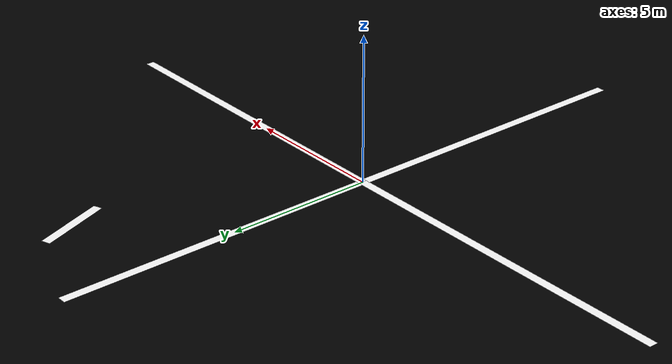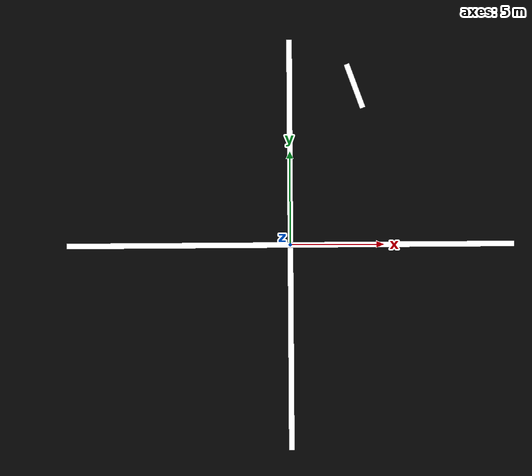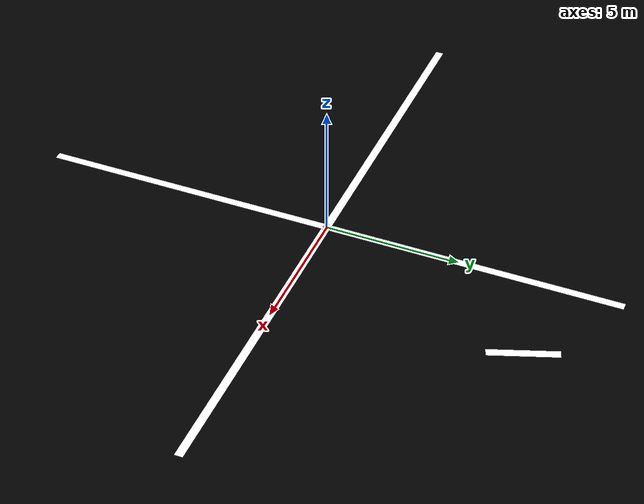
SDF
<?xml version="1.0" ?>
<sdf version="1.6">
  <world name="default">
    <scene>
      <sky><enable>false</enable></sky>
      <ambient>0.02 0.02 0.02 1</ambient>
      <background>0 0 0 1</background>
      <shadows>false</shadows>
    </scene>

    <include>
      <uri>model://blacktrack</uri>
      <pose>0 0 0 0 0 0</pose>
    </include>

    <gravity>0 0 -9.81</gravity>
    <physics type="ode">
      <max_step_size>0.001</max_step_size>
      <real_time_update_rate>1000</real_time_update_rate>
    </physics>
  </world>
</sdf>

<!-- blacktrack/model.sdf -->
<sdf version="1.6">
  <model name="blacktrack">
    <static>true</static>
    <self_collide>false</self_collide>

    <!-- ⚫️ 바닥: 충돌 plane (z=0), 시각화는 검정 -->
    <link name="floor_link">
      <pose>0 0 0 0 0 0</pose>
      <collision name="floor_collision">
        <geometry>
          <plane>
            <normal>0 0 1</normal>
            <size>50 50</size> <!-- 반드시 양수 -->
          </plane>
        </geometry>
      </collision>
      <visual name="floor_visual">
        <cast_shadows>false</cast_shadows>
        <geometry>
          <plane>
            <normal>0 0 1</normal>
            <size>50 50</size>
          </plane>
        </geometry>
        <material>
          <ambient>0 0 0 1</ambient>
          <diffuse>0 0 0 1</diffuse>
          <specular>0 0 0 1</specular>
          <emissive>0 0 0 1</emissive>
        </material>
      </visual>
    </link>

    <!-- ⚪️ 트랙 라인: visual-only 얇은 박스들 (collision 없음), z=+0.01로 살짝 띄움 -->
    <!-- 바깥 직선 구간이 긴 ‘운동장’ 형태: 필요만큼 복제/배치하면 됨 -->
    <!-- 중앙 세로 라인 -->
    <link name="lane_center_1">
      <pose>0 0 0.01 0 0 0</pose>
      <visual name="v">
        <geometry><box><size>0.30 22.0 0.001</size></box></geometry>
        <material><diffuse>1 1 1 1</diffuse><emissive>1 1 1 1</emissive></material>
      </visual>
    </link>

    <!-- 가로 라인 (좌우 직선 구간) -->
    <link name="lane_center_2">
      <pose>6.0 0 0.01 0 0 1.57079632679</pose> <!-- 90도 회전 -->
      <visual name="v">
        <geometry><box><size>0.30 12.0 0.001</size></box></geometry>
        <material><diffuse>1 1 1 1</diffuse><emissive>1 1 1 1</emissive></material>
      </visual>
    </link>
    <link name="lane_center_3">
      <pose>-6.0 0 0.01 0 0 1.57079632679</pose>
      <visual name="v">
        <geometry><box><size>0.30 12.0 0.001</size></box></geometry>
        <material><diffuse>1 1 1 1</diffuse><emissive>1 1 1 1</emissive></material>
      </visual>
    </link>

    <!-- 코너: 짧은 박스를 각도 바꿔 이어붙여 타원형 근사 (예: 12개) -->
    <!-- 필요에 따라 각도/길이 조절 가능 -->
    <!-- 오른쪽 위 쿼드런트 예시 -->
    <link name="corner_ru_1">
      <pose>3.5 8.5 0.01 0 0 0.35</pose>
      <visual name="v">
        <geometry><box><size>0.30 2.5 0.001</size></box></geometry>
        <material><diffuse>1 1 1 1</diffuse><emissive>1 1 1 1</emissive></material>
      </visual>
    </link>
    <!-- … 동일 패턴으로 10~14개 정도 배치 (좌표/각도만 달리) … -->

    <!-- 필요하면 외곽선/차선 추가: 같은 방식으로 link 복제 -->
  </model>
</sdf>
